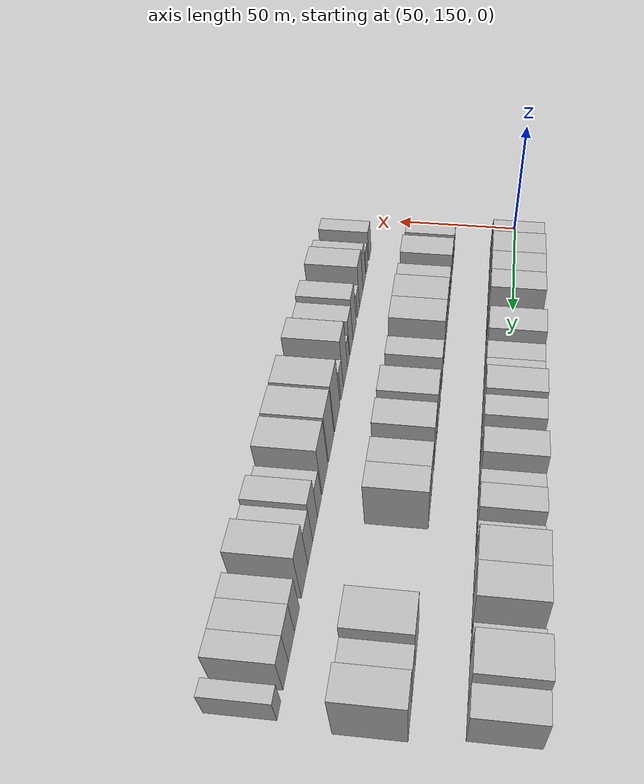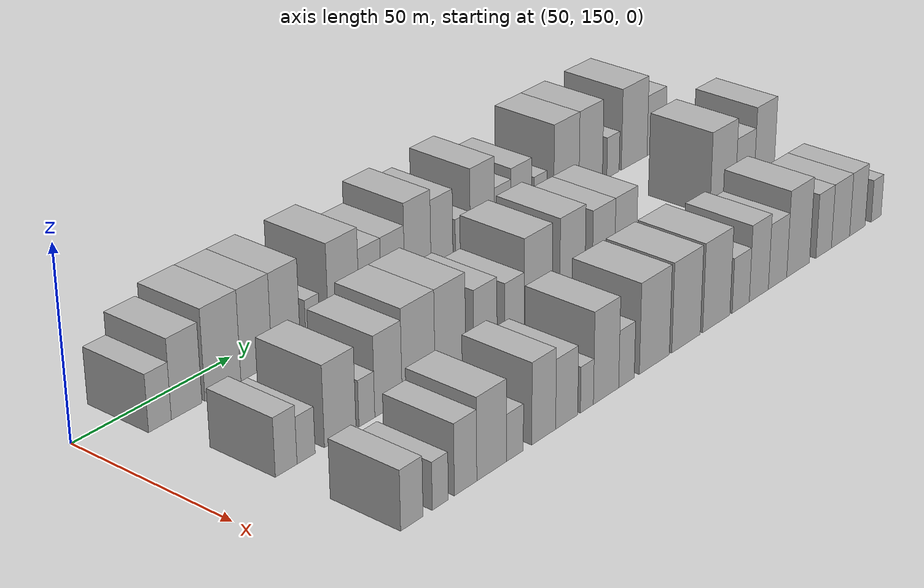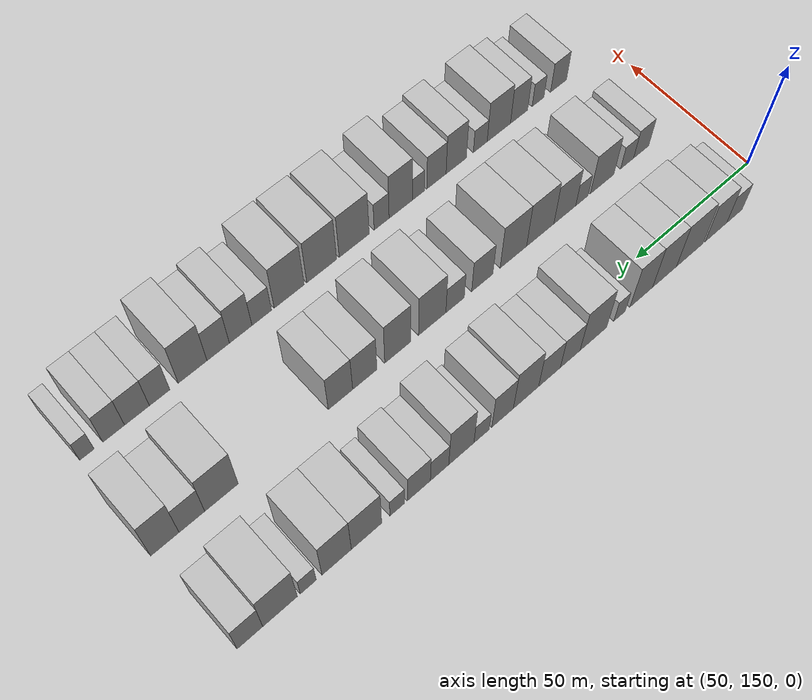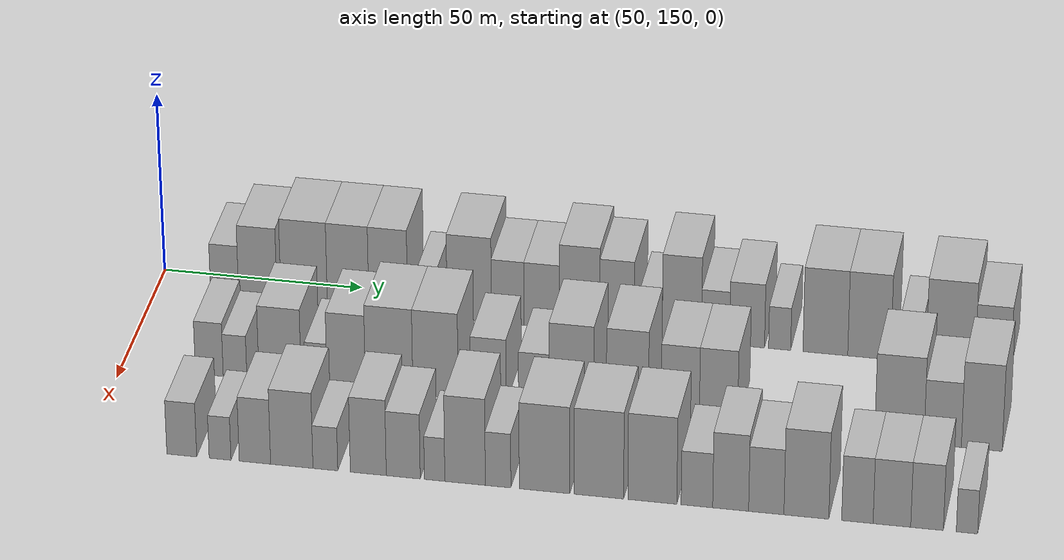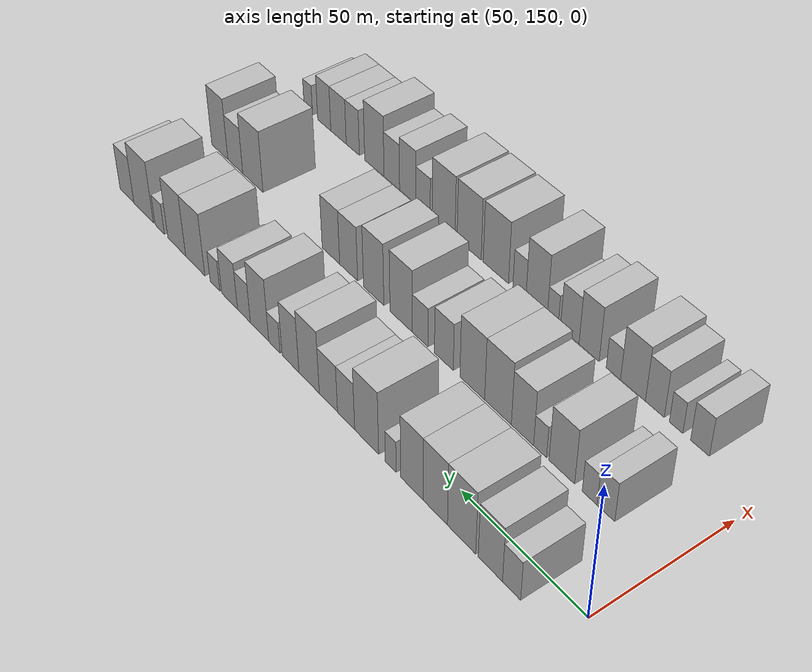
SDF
<sdf version="1.6">
 <world name="default">
  <model name="building_58">
   <static>1</static>
   <pose>50.0000 167.4684 0 0.000000 0.000000 0.000000</pose>
   <link name="link">
    <pose>0 0 7.50 0 0 0</pose>
    <collision name="collision"><geometry><box><size>20.0000 7.0686 15.0000</size></box></geometry></collision>
    <visual name="visual">
     <cast_shadows>0</cast_shadows>
     <geometry><box><size>20.0000 7.0686 15.0000</size></box></geometry>
     <material>
      <script>
       <uri>model://HANNAS_wall/materials/scripts</uri>
       <uri>model://HANNAS_wall/materials/textures</uri>
       <name>vrc/HANNAS_wall</name>
      </script>
     </material>
    </visual>
   </link>
  </model>
  <model name="building_59">
   <static>1</static>
   <pose>50.0000 175.8399 0 0.000000 0.000000 0.000000</pose>
   <link name="link">
    <pose>0 0 10.50 0 0 0</pose>
    <collision name="collision"><geometry><box><size>20.0000 9.6744 21.0000</size></box></geometry></collision>
    <visual name="visual">
     <cast_shadows>0</cast_shadows>
     <geometry><box><size>20.0000 9.6744 21.0000</size></box></geometry>
     <material>
      <script>
       <uri>model://HANNAS_wall/materials/scripts</uri>
       <uri>model://HANNAS_wall/materials/textures</uri>
       <name>vrc/HANNAS_wall</name>
      </script>
     </material>
    </visual>
   </link>
  </model>
  <model name="building_60">
   <static>1</static>
   <pose>50.0000 187.4955 0 0.000000 0.000000 0.000000</pose>
   <link name="link">
    <pose>0 0 12.00 0 0 0</pose>
    <collision name="collision"><geometry><box><size>20.0000 11.6368 24.0000</size></box></geometry></collision>
    <visual name="visual">
     <cast_shadows>0</cast_shadows>
     <geometry><box><size>20.0000 11.6368 24.0000</size></box></geometry>
     <material>
      <script>
       <uri>model://HANNAS_wall/materials/scripts</uri>
       <uri>model://HANNAS_wall/materials/textures</uri>
       <name>vrc/HANNAS_wall</name>
      </script>
     </material>
    </visual>
   </link>
  </model>
  <model name="building_61">
   <static>1</static>
   <pose>50.0000 198.5127 0 0.000000 0.000000 0.000000</pose>
   <link name="link">
    <pose>0 0 12.00 0 0 0</pose>
    <collision name="collision"><geometry><box><size>20.0000 10.3974 24.0000</size></box></geometry></collision>
    <visual name="visual">
     <cast_shadows>0</cast_shadows>
     <geometry><box><size>20.0000 10.3974 24.0000</size></box></geometry>
     <material>
      <script>
       <uri>model://HANNAS_wall/materials/scripts</uri>
       <uri>model://HANNAS_wall/materials/textures</uri>
       <name>vrc/HANNAS_wall</name>
      </script>
     </material>
    </visual>
   </link>
  </model>
  <model name="building_62">
   <static>1</static>
   <pose>50.0000 208.5601 0 0.000000 0.000000 0.000000</pose>
   <link name="link">
    <pose>0 0 12.00 0 0 0</pose>
    <collision name="collision"><geometry><box><size>20.0000 9.6974 24.0000</size></box></geometry></collision>
    <visual name="visual">
     <cast_shadows>0</cast_shadows>
     <geometry><box><size>20.0000 9.6974 24.0000</size></box></geometry>
     <material>
      <script>
       <uri>model://HANNAS_wall/materials/scripts</uri>
       <uri>model://HANNAS_wall/materials/textures</uri>
       <name>vrc/HANNAS_wall</name>
      </script>
     </material>
    </visual>
   </link>
  </model>
  <model name="building_63">
   <static>1</static>
   <pose>50.0000 217.8265 0 0.000000 0.000000 0.000000</pose>
   <link name="link">
    <pose>0 0 6.00 0 0 0</pose>
    <collision name="collision"><geometry><box><size>20.0000 4.8355 12.0000</size></box></geometry></collision>
    <visual name="visual">
     <cast_shadows>0</cast_shadows>
     <geometry><box><size>20.0000 4.8355 12.0000</size></box></geometry>
     <material>
      <script>
       <uri>model://HANNAS_wall/materials/scripts</uri>
       <uri>model://HANNAS_wall/materials/textures</uri>
       <name>vrc/HANNAS_wall</name>
      </script>
     </material>
    </visual>
   </link>
  </model>
  <model name="building_64">
   <static>1</static>
   <pose>50.0000 228.7543 0 0.000000 0.000000 0.000000</pose>
   <link name="link">
    <pose>0 0 12.00 0 0 0</pose>
    <collision name="collision"><geometry><box><size>20.0000 11.0201 24.0000</size></box></geometry></collision>
    <visual name="visual">
     <cast_shadows>0</cast_shadows>
     <geometry><box><size>20.0000 11.0201 24.0000</size></box></geometry>
     <material>
      <script>
       <uri>model://HANNAS_wall/materials/scripts</uri>
       <uri>model://HANNAS_wall/materials/textures</uri>
       <name>vrc/HANNAS_wall</name>
      </script>
     </material>
    </visual>
   </link>
  </model>
  <model name="building_65">
   <static>1</static>
   <pose>50.0000 238.3032 0 0.000000 0.000000 0.000000</pose>
   <link name="link">
    <pose>0 0 9.00 0 0 0</pose>
    <collision name="collision"><geometry><box><size>20.0000 8.0778 18.0000</size></box></geometry></collision>
    <visual name="visual">
     <cast_shadows>0</cast_shadows>
     <geometry><box><size>20.0000 8.0778 18.0000</size></box></geometry>
     <material>
      <script>
       <uri>model://HANNAS_wall/materials/scripts</uri>
       <uri>model://HANNAS_wall/materials/textures</uri>
       <name>vrc/HANNAS_wall</name>
      </script>
     </material>
    </visual>
   </link>
  </model>
  <model name="building_66">
   <static>1</static>
   <pose>50.0000 246.7256 0 0.000000 0.000000 0.000000</pose>
   <link name="link">
    <pose>0 0 9.00 0 0 0</pose>
    <collision name="collision"><geometry><box><size>20.0000 8.7670 18.0000</size></box></geometry></collision>
    <visual name="visual">
     <cast_shadows>0</cast_shadows>
     <geometry><box><size>20.0000 8.7670 18.0000</size></box></geometry>
     <material>
      <script>
       <uri>model://HANNAS_wall/materials/scripts</uri>
       <uri>model://HANNAS_wall/materials/textures</uri>
       <name>vrc/HANNAS_wall</name>
      </script>
     </material>
    </visual>
   </link>
  </model>
  <model name="building_67">
   <static>1</static>
   <pose>50.0000 256.1315 0 0.000000 0.000000 0.000000</pose>
   <link name="link">
    <pose>0 0 12.00 0 0 0</pose>
    <collision name="collision"><geometry><box><size>20.0000 10.0448 24.0000</size></box></geometry></collision>
    <visual name="visual">
     <cast_shadows>0</cast_shadows>
     <geometry><box><size>20.0000 10.0448 24.0000</size></box></geometry>
     <material>
      <script>
       <uri>model://HANNAS_wall/materials/scripts</uri>
       <uri>model://HANNAS_wall/materials/textures</uri>
       <name>vrc/HANNAS_wall</name>
      </script>
     </material>
    </visual>
   </link>
  </model>
  <model name="building_68">
   <static>1</static>
   <pose>50.0000 265.3993 0 0.000000 0.000000 0.000000</pose>
   <link name="link">
    <pose>0 0 10.50 0 0 0</pose>
    <collision name="collision"><geometry><box><size>20.0000 8.4908 21.0000</size></box></geometry></collision>
    <visual name="visual">
     <cast_shadows>0</cast_shadows>
     <geometry><box><size>20.0000 8.4908 21.0000</size></box></geometry>
     <material>
      <script>
       <uri>model://HANNAS_wall/materials/scripts</uri>
       <uri>model://HANNAS_wall/materials/textures</uri>
       <name>vrc/HANNAS_wall</name>
      </script>
     </material>
    </visual>
   </link>
  </model>
  <model name="building_69">
   <static>1</static>
   <pose>50.0000 273.5868 0 0.000000 0.000000 0.000000</pose>
   <link name="link">
    <pose>0 0 6.00 0 0 0</pose>
    <collision name="collision"><geometry><box><size>20.0000 5.8842 12.0000</size></box></geometry></collision>
    <visual name="visual">
     <cast_shadows>0</cast_shadows>
     <geometry><box><size>20.0000 5.8842 12.0000</size></box></geometry>
     <material>
      <script>
       <uri>model://HANNAS_wall/materials/scripts</uri>
       <uri>model://HANNAS_wall/materials/textures</uri>
       <name>vrc/HANNAS_wall</name>
      </script>
     </material>
    </visual>
   </link>
  </model>
  <model name="building_70">
   <static>1</static>
   <pose>50.0000 281.3481 0 0.000000 0.000000 0.000000</pose>
   <link name="link">
    <pose>0 0 12.00 0 0 0</pose>
    <collision name="collision"><geometry><box><size>20.0000 9.6383 24.0000</size></box></geometry></collision>
    <visual name="visual">
     <cast_shadows>0</cast_shadows>
     <geometry><box><size>20.0000 9.6383 24.0000</size></box></geometry>
     <material>
      <script>
       <uri>model://HANNAS_wall/materials/scripts</uri>
       <uri>model://HANNAS_wall/materials/textures</uri>
       <name>vrc/HANNAS_wall</name>
      </script>
     </material>
    </visual>
   </link>
  </model>
  <model name="building_71">
   <static>1</static>
   <pose>50.0000 289.6232 0 0.000000 0.000000 0.000000</pose>
   <link name="link">
    <pose>0 0 7.50 0 0 0</pose>
    <collision name="collision"><geometry><box><size>20.0000 6.9120 15.0000</size></box></geometry></collision>
    <visual name="visual">
     <cast_shadows>0</cast_shadows>
     <geometry><box><size>20.0000 6.9120 15.0000</size></box></geometry>
     <material>
      <script>
       <uri>model://HANNAS_wall/materials/scripts</uri>
       <uri>model://HANNAS_wall/materials/textures</uri>
       <name>vrc/HANNAS_wall</name>
      </script>
     </material>
    </visual>
   </link>
  </model>
  <model name="building_72">
   <static>1</static>
   <pose>50.0000 297.3743 0 0.000000 0.000000 0.000000</pose>
   <link name="link">
    <pose>0 0 9.00 0 0 0</pose>
    <collision name="collision"><geometry><box><size>20.0000 8.5903 18.0000</size></box></geometry></collision>
    <visual name="visual">
     <cast_shadows>0</cast_shadows>
     <geometry><box><size>20.0000 8.5903 18.0000</size></box></geometry>
     <material>
      <script>
       <uri>model://HANNAS_wall/materials/scripts</uri>
       <uri>model://HANNAS_wall/materials/textures</uri>
       <name>vrc/HANNAS_wall</name>
      </script>
     </material>
    </visual>
   </link>
  </model>
  <model name="building_73">
   <static>1</static>
   <pose>50.0000 305.3753 0 0.000000 0.000000 0.000000</pose>
   <link name="link">
    <pose>0 0 6.00 0 0 0</pose>
    <collision name="collision"><geometry><box><size>20.0000 5.4117 12.0000</size></box></geometry></collision>
    <visual name="visual">
     <cast_shadows>0</cast_shadows>
     <geometry><box><size>20.0000 5.4117 12.0000</size></box></geometry>
     <material>
      <script>
       <uri>model://HANNAS_wall/materials/scripts</uri>
       <uri>model://HANNAS_wall/materials/textures</uri>
       <name>vrc/HANNAS_wall</name>
      </script>
     </material>
    </visual>
   </link>
  </model>
  <model name="building_74">
   <static>1</static>
   <pose>50.0000 316.5527 0 0.000000 0.000000 0.000000</pose>
   <link name="link">
    <pose>0 0 12.00 0 0 0</pose>
    <collision name="collision"><geometry><box><size>20.0000 10.9432 24.0000</size></box></geometry></collision>
    <visual name="visual">
     <cast_shadows>0</cast_shadows>
     <geometry><box><size>20.0000 10.9432 24.0000</size></box></geometry>
     <material>
      <script>
       <uri>model://HANNAS_wall/materials/scripts</uri>
       <uri>model://HANNAS_wall/materials/textures</uri>
       <name>vrc/HANNAS_wall</name>
      </script>
     </material>
    </visual>
   </link>
  </model>
  <model name="building_75">
   <static>1</static>
   <pose>50.0000 327.2514 0 0.000000 0.000000 0.000000</pose>
   <link name="link">
    <pose>0 0 12.00 0 0 0</pose>
    <collision name="collision"><geometry><box><size>20.0000 10.4541 24.0000</size></box></geometry></collision>
    <visual name="visual">
     <cast_shadows>0</cast_shadows>
     <geometry><box><size>20.0000 10.4541 24.0000</size></box></geometry>
     <material>
      <script>
       <uri>model://HANNAS_wall/materials/scripts</uri>
       <uri>model://HANNAS_wall/materials/textures</uri>
       <name>vrc/HANNAS_wall</name>
      </script>
     </material>
    </visual>
   </link>
  </model>
  <model name="building_76">
   <static>1</static>
   <pose>50.0000 337.2735 0 0.000000 0.000000 0.000000</pose>
   <link name="link">
    <pose>0 0 6.00 0 0 0</pose>
    <collision name="collision"><geometry><box><size>20.0000 5.5901 12.0000</size></box></geometry></collision>
    <visual name="visual">
     <cast_shadows>0</cast_shadows>
     <geometry><box><size>20.0000 5.5901 12.0000</size></box></geometry>
     <material>
      <script>
       <uri>model://HANNAS_wall/materials/scripts</uri>
       <uri>model://HANNAS_wall/materials/textures</uri>
       <name>vrc/HANNAS_wall</name>
      </script>
     </material>
    </visual>
   </link>
  </model>
  <model name="building_77">
   <static>1</static>
   <pose>50.0000 347.0227 0 0.000000 0.000000 0.000000</pose>
   <link name="link">
    <pose>0 0 12.00 0 0 0</pose>
    <collision name="collision"><geometry><box><size>20.0000 11.9084 24.0000</size></box></geometry></collision>
    <visual name="visual">
     <cast_shadows>0</cast_shadows>
     <geometry><box><size>20.0000 11.9084 24.0000</size></box></geometry>
     <material>
      <script>
       <uri>model://HANNAS_wall/materials/scripts</uri>
       <uri>model://HANNAS_wall/materials/textures</uri>
       <name>vrc/HANNAS_wall</name>
      </script>
     </material>
    </visual>
   </link>
  </model>
  <model name="building_78">
   <static>1</static>
   <pose>50.0000 357.3145 0 0.000000 0.000000 0.000000</pose>
   <link name="link">
    <pose>0 0 9.00 0 0 0</pose>
    <collision name="collision"><geometry><box><size>20.0000 8.6751 18.0000</size></box></geometry></collision>
    <visual name="visual">
     <cast_shadows>0</cast_shadows>
     <geometry><box><size>20.0000 8.6751 18.0000</size></box></geometry>
     <material>
      <script>
       <uri>model://HANNAS_wall/materials/scripts</uri>
       <uri>model://HANNAS_wall/materials/textures</uri>
       <name>vrc/HANNAS_wall</name>
      </script>
     </material>
    </visual>
   </link>
  </model>
  <model name="building_138">
   <static>1</static>
   <pose>85.0000 171.6947 0 0.000000 0.000000 0.000000</pose>
   <link name="link">
    <pose>0 0 7.50 0 0 0</pose>
    <collision name="collision"><geometry><box><size>20.0000 6.8505 15.0000</size></box></geometry></collision>
    <visual name="visual">
     <cast_shadows>0</cast_shadows>
     <geometry><box><size>20.0000 6.8505 15.0000</size></box></geometry>
     <material>
      <script>
       <uri>model://HANNAS_wall/materials/scripts</uri>
       <uri>model://HANNAS_wall/materials/textures</uri>
       <name>vrc/HANNAS_wall</name>
      </script>
     </material>
    </visual>
   </link>
  </model>
  <model name="building_139">
   <static>1</static>
   <pose>85.0000 178.0321 0 0.000000 0.000000 0.000000</pose>
   <link name="link">
    <pose>0 0 6.00 0 0 0</pose>
    <collision name="collision"><geometry><box><size>20.0000 5.8242 12.0000</size></box></geometry></collision>
    <visual name="visual">
     <cast_shadows>0</cast_shadows>
     <geometry><box><size>20.0000 5.8242 12.0000</size></box></geometry>
     <material>
      <script>
       <uri>model://HANNAS_wall/materials/scripts</uri>
       <uri>model://HANNAS_wall/materials/textures</uri>
       <name>vrc/HANNAS_wall</name>
      </script>
     </material>
    </visual>
   </link>
  </model>
  <model name="building_140">
   <static>1</static>
   <pose>85.0000 189.1366 0 0.000000 0.000000 0.000000</pose>
   <link name="link">
    <pose>0 0 10.50 0 0 0</pose>
    <collision name="collision"><geometry><box><size>20.0000 10.3849 21.0000</size></box></geometry></collision>
    <visual name="visual">
     <cast_shadows>0</cast_shadows>
     <geometry><box><size>20.0000 10.3849 21.0000</size></box></geometry>
     <material>
      <script>
       <uri>model://HANNAS_wall/materials/scripts</uri>
       <uri>model://HANNAS_wall/materials/textures</uri>
       <name>vrc/HANNAS_wall</name>
      </script>
     </material>
    </visual>
   </link>
  </model>
  <model name="building_141">
   <static>1</static>
   <pose>85.0000 198.0063 0 0.000000 0.000000 0.000000</pose>
   <link name="link">
    <pose>0 0 6.00 0 0 0</pose>
    <collision name="collision"><geometry><box><size>20.0000 5.3545 12.0000</size></box></geometry></collision>
    <visual name="visual">
     <cast_shadows>0</cast_shadows>
     <geometry><box><size>20.0000 5.3545 12.0000</size></box></geometry>
     <material>
      <script>
       <uri>model://HANNAS_wall/materials/scripts</uri>
       <uri>model://HANNAS_wall/materials/textures</uri>
       <name>vrc/HANNAS_wall</name>
      </script>
     </material>
    </visual>
   </link>
  </model>
  <model name="building_142">
   <static>1</static>
   <pose>85.0000 205.3865 0 0.000000 0.000000 0.000000</pose>
   <link name="link">
    <pose>0 0 10.50 0 0 0</pose>
    <collision name="collision"><geometry><box><size>20.0000 9.4059 21.0000</size></box></geometry></collision>
    <visual name="visual">
     <cast_shadows>0</cast_shadows>
     <geometry><box><size>20.0000 9.4059 21.0000</size></box></geometry>
     <material>
      <script>
       <uri>model://HANNAS_wall/materials/scripts</uri>
       <uri>model://HANNAS_wall/materials/textures</uri>
       <name>vrc/HANNAS_wall</name>
      </script>
     </material>
    </visual>
   </link>
  </model>
  <model name="building_143">
   <static>1</static>
   <pose>85.0000 215.8796 0 0.000000 0.000000 0.000000</pose>
   <link name="link">
    <pose>0 0 12.00 0 0 0</pose>
    <collision name="collision"><geometry><box><size>20.0000 11.5802 24.0000</size></box></geometry></collision>
    <visual name="visual">
     <cast_shadows>0</cast_shadows>
     <geometry><box><size>20.0000 11.5802 24.0000</size></box></geometry>
     <material>
      <script>
       <uri>model://HANNAS_wall/materials/scripts</uri>
       <uri>model://HANNAS_wall/materials/textures</uri>
       <name>vrc/HANNAS_wall</name>
      </script>
     </material>
    </visual>
   </link>
  </model>
  <model name="building_144">
   <static>1</static>
   <pose>85.0000 227.1946 0 0.000000 0.000000 0.000000</pose>
   <link name="link">
    <pose>0 0 12.00 0 0 0</pose>
    <collision name="collision"><geometry><box><size>20.0000 11.0499 24.0000</size></box></geometry></collision>
    <visual name="visual">
     <cast_shadows>0</cast_shadows>
     <geometry><box><size>20.0000 11.0499 24.0000</size></box></geometry>
     <material>
      <script>
       <uri>model://HANNAS_wall/materials/scripts</uri>
       <uri>model://HANNAS_wall/materials/textures</uri>
       <name>vrc/HANNAS_wall</name>
      </script>
     </material>
    </visual>
   </link>
  </model>
  <model name="building_145">
   <static>1</static>
   <pose>85.0000 240.0616 0 0.000000 0.000000 0.000000</pose>
   <link name="link">
    <pose>0 0 9.00 0 0 0</pose>
    <collision name="collision"><geometry><box><size>20.0000 8.6841 18.0000</size></box></geometry></collision>
    <visual name="visual">
     <cast_shadows>0</cast_shadows>
     <geometry><box><size>20.0000 8.6841 18.0000</size></box></geometry>
     <material>
      <script>
       <uri>model://HANNAS_wall/materials/scripts</uri>
       <uri>model://HANNAS_wall/materials/textures</uri>
       <name>vrc/HANNAS_wall</name>
      </script>
     </material>
    </visual>
   </link>
  </model>
  <model name="building_146">
   <static>1</static>
   <pose>85.0000 251.1031 0 0.000000 0.000000 0.000000</pose>
   <link name="link">
    <pose>0 0 7.50 0 0 0</pose>
    <collision name="collision"><geometry><box><size>20.0000 7.3989 15.0000</size></box></geometry></collision>
    <visual name="visual">
     <cast_shadows>0</cast_shadows>
     <geometry><box><size>20.0000 7.3989 15.0000</size></box></geometry>
     <material>
      <script>
       <uri>model://HANNAS_wall/materials/scripts</uri>
       <uri>model://HANNAS_wall/materials/textures</uri>
       <name>vrc/HANNAS_wall</name>
      </script>
     </material>
    </visual>
   </link>
  </model>
  <model name="building_147">
   <static>1</static>
   <pose>85.0000 260.2322 0 0.000000 0.000000 0.000000</pose>
   <link name="link">
    <pose>0 0 12.00 0 0 0</pose>
    <collision name="collision"><geometry><box><size>20.0000 10.8592 24.0000</size></box></geometry></collision>
    <visual name="visual">
     <cast_shadows>0</cast_shadows>
     <geometry><box><size>20.0000 10.8592 24.0000</size></box></geometry>
     <material>
      <script>
       <uri>model://HANNAS_wall/materials/scripts</uri>
       <uri>model://HANNAS_wall/materials/textures</uri>
       <name>vrc/HANNAS_wall</name>
      </script>
     </material>
    </visual>
   </link>
  </model>
  <model name="building_148">
   <static>1</static>
   <pose>85.0000 273.7429 0 0.000000 0.000000 0.000000</pose>
   <link name="link">
    <pose>0 0 12.00 0 0 0</pose>
    <collision name="collision"><geometry><box><size>20.0000 10.1622 24.0000</size></box></geometry></collision>
    <visual name="visual">
     <cast_shadows>0</cast_shadows>
     <geometry><box><size>20.0000 10.1622 24.0000</size></box></geometry>
     <material>
      <script>
       <uri>model://HANNAS_wall/materials/scripts</uri>
       <uri>model://HANNAS_wall/materials/textures</uri>
       <name>vrc/HANNAS_wall</name>
      </script>
     </material>
    </visual>
   </link>
  </model>
  <model name="building_149">
   <static>1</static>
   <pose>85.0000 286.4471 0 0.000000 0.000000 0.000000</pose>
   <link name="link">
    <pose>0 0 10.50 0 0 0</pose>
    <collision name="collision"><geometry><box><size>20.0000 9.2464 21.0000</size></box></geometry></collision>
    <visual name="visual">
     <cast_shadows>0</cast_shadows>
     <geometry><box><size>20.0000 9.2464 21.0000</size></box></geometry>
     <material>
      <script>
       <uri>model://HANNAS_wall/materials/scripts</uri>
       <uri>model://HANNAS_wall/materials/textures</uri>
       <name>vrc/HANNAS_wall</name>
      </script>
     </material>
    </visual>
   </link>
  </model>
  <model name="building_150">
   <static>1</static>
   <pose>85.0000 295.6731 0 0.000000 0.000000 0.000000</pose>
   <link name="link">
    <pose>0 0 10.50 0 0 0</pose>
    <collision name="collision"><geometry><box><size>20.0000 9.2055 21.0000</size></box></geometry></collision>
    <visual name="visual">
     <cast_shadows>0</cast_shadows>
     <geometry><box><size>20.0000 9.2055 21.0000</size></box></geometry>
     <material>
      <script>
       <uri>model://HANNAS_wall/materials/scripts</uri>
       <uri>model://HANNAS_wall/materials/textures</uri>
       <name>vrc/HANNAS_wall</name>
      </script>
     </material>
    </visual>
   </link>
  </model>
  <model name="building_151">
   <static>1</static>
   <pose>85.0000 338.9034 0 0.000000 0.000000 0.000000</pose>
   <link name="link">
    <pose>0 0 12.00 0 0 0</pose>
    <collision name="collision"><geometry><box><size>20.0000 11.7517 24.0000</size></box></geometry></collision>
    <visual name="visual">
     <cast_shadows>0</cast_shadows>
     <geometry><box><size>20.0000 11.7517 24.0000</size></box></geometry>
     <material>
      <script>
       <uri>model://HANNAS_wall/materials/scripts</uri>
       <uri>model://HANNAS_wall/materials/textures</uri>
       <name>vrc/HANNAS_wall</name>
      </script>
     </material>
    </visual>
   </link>
  </model>
  <model name="building_152">
   <static>1</static>
   <pose>85.0000 349.2161 0 0.000000 0.000000 0.000000</pose>
   <link name="link">
    <pose>0 0 9.00 0 0 0</pose>
    <collision name="collision"><geometry><box><size>20.0000 8.8738 18.0000</size></box></geometry></collision>
    <visual name="visual">
     <cast_shadows>0</cast_shadows>
     <geometry><box><size>20.0000 8.8738 18.0000</size></box></geometry>
     <material>
      <script>
       <uri>model://HANNAS_wall/materials/scripts</uri>
       <uri>model://HANNAS_wall/materials/textures</uri>
       <name>vrc/HANNAS_wall</name>
      </script>
     </material>
    </visual>
   </link>
  </model>
  <model name="building_153">
   <static>1</static>
   <pose>85.0000 358.4940 0 0.000000 0.000000 0.000000</pose>
   <link name="link">
    <pose>0 0 12.00 0 0 0</pose>
    <collision name="collision"><geometry><box><size>20.0000 9.6821 24.0000</size></box></geometry></collision>
    <visual name="visual">
     <cast_shadows>0</cast_shadows>
     <geometry><box><size>20.0000 9.6821 24.0000</size></box></geometry>
     <material>
      <script>
       <uri>model://HANNAS_wall/materials/scripts</uri>
       <uri>model://HANNAS_wall/materials/textures</uri>
       <name>vrc/HANNAS_wall</name>
      </script>
     </material>
    </visual>
   </link>
  </model>
  <model name="building_212">
   <static>1</static>
   <pose>120.0000 173.1378 0 0.000000 0.000000 0.000000</pose>
   <link name="link">
    <pose>0 0 7.50 0 0 0</pose>
    <collision name="collision"><geometry><box><size>20.0000 7.2031 15.0000</size></box></geometry></collision>
    <visual name="visual">
     <cast_shadows>0</cast_shadows>
     <geometry><box><size>20.0000 7.2031 15.0000</size></box></geometry>
     <material>
      <script>
       <uri>model://HANNAS_wall/materials/scripts</uri>
       <uri>model://HANNAS_wall/materials/textures</uri>
       <name>vrc/HANNAS_wall</name>
      </script>
     </material>
    </visual>
   </link>
  </model>
  <model name="building_213">
   <static>1</static>
   <pose>120.0000 182.3725 0 0.000000 0.000000 0.000000</pose>
   <link name="link">
    <pose>0 0 6.00 0 0 0</pose>
    <collision name="collision"><geometry><box><size>20.0000 5.2661 12.0000</size></box></geometry></collision>
    <visual name="visual">
     <cast_shadows>0</cast_shadows>
     <geometry><box><size>20.0000 5.2661 12.0000</size></box></geometry>
     <material>
      <script>
       <uri>model://HANNAS_wall/materials/scripts</uri>
       <uri>model://HANNAS_wall/materials/textures</uri>
       <name>vrc/HANNAS_wall</name>
      </script>
     </material>
    </visual>
   </link>
  </model>
  <model name="building_214">
   <static>1</static>
   <pose>120.0000 190.7791 0 0.000000 0.000000 0.000000</pose>
   <link name="link">
    <pose>0 0 9.00 0 0 0</pose>
    <collision name="collision"><geometry><box><size>20.0000 7.5471 18.0000</size></box></geometry></collision>
    <visual name="visual">
     <cast_shadows>0</cast_shadows>
     <geometry><box><size>20.0000 7.5471 18.0000</size></box></geometry>
     <material>
      <script>
       <uri>model://HANNAS_wall/materials/scripts</uri>
       <uri>model://HANNAS_wall/materials/textures</uri>
       <name>vrc/HANNAS_wall</name>
      </script>
     </material>
    </visual>
   </link>
  </model>
  <model name="building_215">
   <static>1</static>
   <pose>120.0000 199.6358 0 0.000000 0.000000 0.000000</pose>
   <link name="link">
    <pose>0 0 10.50 0 0 0</pose>
    <collision name="collision"><geometry><box><size>20.0000 10.1663 21.0000</size></box></geometry></collision>
    <visual name="visual">
     <cast_shadows>0</cast_shadows>
     <geometry><box><size>20.0000 10.1663 21.0000</size></box></geometry>
     <material>
      <script>
       <uri>model://HANNAS_wall/materials/scripts</uri>
       <uri>model://HANNAS_wall/materials/textures</uri>
       <name>vrc/HANNAS_wall</name>
      </script>
     </material>
    </visual>
   </link>
  </model>
  <model name="building_216">
   <static>1</static>
   <pose>120.0000 207.6960 0 0.000000 0.000000 0.000000</pose>
   <link name="link">
    <pose>0 0 6.00 0 0 0</pose>
    <collision name="collision"><geometry><box><size>20.0000 5.9541 12.0000</size></box></geometry></collision>
    <visual name="visual">
     <cast_shadows>0</cast_shadows>
     <geometry><box><size>20.0000 5.9541 12.0000</size></box></geometry>
     <material>
      <script>
       <uri>model://HANNAS_wall/materials/scripts</uri>
       <uri>model://HANNAS_wall/materials/textures</uri>
       <name>vrc/HANNAS_wall</name>
      </script>
     </material>
    </visual>
   </link>
  </model>
  <model name="building_217">
   <static>1</static>
   <pose>120.0000 217.9767 0 0.000000 0.000000 0.000000</pose>
   <link name="link">
    <pose>0 0 10.50 0 0 0</pose>
    <collision name="collision"><geometry><box><size>20.0000 8.6075 21.0000</size></box></geometry></collision>
    <visual name="visual">
     <cast_shadows>0</cast_shadows>
     <geometry><box><size>20.0000 8.6075 21.0000</size></box></geometry>
     <material>
      <script>
       <uri>model://HANNAS_wall/materials/scripts</uri>
       <uri>model://HANNAS_wall/materials/textures</uri>
       <name>vrc/HANNAS_wall</name>
      </script>
     </material>
    </visual>
   </link>
  </model>
  <model name="building_218">
   <static>1</static>
   <pose>120.0000 226.3321 0 0.000000 0.000000 0.000000</pose>
   <link name="link">
    <pose>0 0 9.00 0 0 0</pose>
    <collision name="collision"><geometry><box><size>20.0000 8.1031 18.0000</size></box></geometry></collision>
    <visual name="visual">
     <cast_shadows>0</cast_shadows>
     <geometry><box><size>20.0000 8.1031 18.0000</size></box></geometry>
     <material>
      <script>
       <uri>model://HANNAS_wall/materials/scripts</uri>
       <uri>model://HANNAS_wall/materials/textures</uri>
       <name>vrc/HANNAS_wall</name>
      </script>
     </material>
    </visual>
   </link>
  </model>
  <model name="building_219">
   <static>1</static>
   <pose>120.0000 233.8186 0 0.000000 0.000000 0.000000</pose>
   <link name="link">
    <pose>0 0 6.00 0 0 0</pose>
    <collision name="collision"><geometry><box><size>20.0000 4.8700 12.0000</size></box></geometry></collision>
    <visual name="visual">
     <cast_shadows>0</cast_shadows>
     <geometry><box><size>20.0000 4.8700 12.0000</size></box></geometry>
     <material>
      <script>
       <uri>model://HANNAS_wall/materials/scripts</uri>
       <uri>model://HANNAS_wall/materials/textures</uri>
       <name>vrc/HANNAS_wall</name>
      </script>
     </material>
    </visual>
   </link>
  </model>
  <model name="building_220">
   <static>1</static>
   <pose>120.0000 241.0760 0 0.000000 0.000000 0.000000</pose>
   <link name="link">
    <pose>0 0 12.00 0 0 0</pose>
    <collision name="collision"><geometry><box><size>20.0000 9.6448 24.0000</size></box></geometry></collision>
    <visual name="visual">
     <cast_shadows>0</cast_shadows>
     <geometry><box><size>20.0000 9.6448 24.0000</size></box></geometry>
     <material>
      <script>
       <uri>model://HANNAS_wall/materials/scripts</uri>
       <uri>model://HANNAS_wall/materials/textures</uri>
       <name>vrc/HANNAS_wall</name>
      </script>
     </material>
    </visual>
   </link>
  </model>
  <model name="building_221">
   <static>1</static>
   <pose>120.0000 248.9294 0 0.000000 0.000000 0.000000</pose>
   <link name="link">
    <pose>0 0 7.50 0 0 0</pose>
    <collision name="collision"><geometry><box><size>20.0000 6.0621 15.0000</size></box></geometry></collision>
    <visual name="visual">
     <cast_shadows>0</cast_shadows>
     <geometry><box><size>20.0000 6.0621 15.0000</size></box></geometry>
     <material>
      <script>
       <uri>model://HANNAS_wall/materials/scripts</uri>
       <uri>model://HANNAS_wall/materials/textures</uri>
       <name>vrc/HANNAS_wall</name>
      </script>
     </material>
    </visual>
   </link>
  </model>
  <model name="building_222">
   <static>1</static>
   <pose>120.0000 259.9529 0 0.000000 0.000000 0.000000</pose>
   <link name="link">
    <pose>0 0 12.00 0 0 0</pose>
    <collision name="collision"><geometry><box><size>20.0000 11.9849 24.0000</size></box></geometry></collision>
    <visual name="visual">
     <cast_shadows>0</cast_shadows>
     <geometry><box><size>20.0000 11.9849 24.0000</size></box></geometry>
     <material>
      <script>
       <uri>model://HANNAS_wall/materials/scripts</uri>
       <uri>model://HANNAS_wall/materials/textures</uri>
       <name>vrc/HANNAS_wall</name>
      </script>
     </material>
    </visual>
   </link>
  </model>
  <model name="building_223">
   <static>1</static>
   <pose>120.0000 272.8052 0 0.000000 0.000000 0.000000</pose>
   <link name="link">
    <pose>0 0 12.00 0 0 0</pose>
    <collision name="collision"><geometry><box><size>20.0000 11.7196 24.0000</size></box></geometry></collision>
    <visual name="visual">
     <cast_shadows>0</cast_shadows>
     <geometry><box><size>20.0000 11.7196 24.0000</size></box></geometry>
     <material>
      <script>
       <uri>model://HANNAS_wall/materials/scripts</uri>
       <uri>model://HANNAS_wall/materials/textures</uri>
       <name>vrc/HANNAS_wall</name>
      </script>
     </material>
    </visual>
   </link>
  </model>
  <model name="building_224">
   <static>1</static>
   <pose>120.0000 285.4331 0 0.000000 0.000000 0.000000</pose>
   <link name="link">
    <pose>0 0 12.00 0 0 0</pose>
    <collision name="collision"><geometry><box><size>20.0000 11.5362 24.0000</size></box></geometry></collision>
    <visual name="visual">
     <cast_shadows>0</cast_shadows>
     <geometry><box><size>20.0000 11.5362 24.0000</size></box></geometry>
     <material>
      <script>
       <uri>model://HANNAS_wall/materials/scripts</uri>
       <uri>model://HANNAS_wall/materials/textures</uri>
       <name>vrc/HANNAS_wall</name>
      </script>
     </material>
    </visual>
   </link>
  </model>
  <model name="building_225">
   <static>1</static>
   <pose>120.0000 295.9117 0 0.000000 0.000000 0.000000</pose>
   <link name="link">
    <pose>0 0 7.50 0 0 0</pose>
    <collision name="collision"><geometry><box><size>20.0000 7.4209 15.0000</size></box></geometry></collision>
    <visual name="visual">
     <cast_shadows>0</cast_shadows>
     <geometry><box><size>20.0000 7.4209 15.0000</size></box></geometry>
     <material>
      <script>
       <uri>model://HANNAS_wall/materials/scripts</uri>
       <uri>model://HANNAS_wall/materials/textures</uri>
       <name>vrc/HANNAS_wall</name>
      </script>
     </material>
    </visual>
   </link>
  </model>
  <model name="building_226">
   <static>1</static>
   <pose>120.0000 303.8402 0 0.000000 0.000000 0.000000</pose>
   <link name="link">
    <pose>0 0 10.50 0 0 0</pose>
    <collision name="collision"><geometry><box><size>20.0000 8.4362 21.0000</size></box></geometry></collision>
    <visual name="visual">
     <cast_shadows>0</cast_shadows>
     <geometry><box><size>20.0000 8.4362 21.0000</size></box></geometry>
     <material>
      <script>
       <uri>model://HANNAS_wall/materials/scripts</uri>
       <uri>model://HANNAS_wall/materials/textures</uri>
       <name>vrc/HANNAS_wall</name>
      </script>
     </material>
    </visual>
   </link>
  </model>
  <model name="building_227">
   <static>1</static>
   <pose>120.0000 312.1937 0 0.000000 0.000000 0.000000</pose>
   <link name="link">
    <pose>0 0 9.00 0 0 0</pose>
    <collision name="collision"><geometry><box><size>20.0000 8.2707 18.0000</size></box></geometry></collision>
    <visual name="visual">
     <cast_shadows>0</cast_shadows>
     <geometry><box><size>20.0000 8.2707 18.0000</size></box></geometry>
     <material>
      <script>
       <uri>model://HANNAS_wall/materials/scripts</uri>
       <uri>model://HANNAS_wall/materials/textures</uri>
       <name>vrc/HANNAS_wall</name>
      </script>
     </material>
    </visual>
   </link>
  </model>
  <model name="building_228">
   <static>1</static>
   <pose>120.0000 321.5768 0 0.000000 0.000000 0.000000</pose>
   <link name="link">
    <pose>0 0 12.00 0 0 0</pose>
    <collision name="collision"><geometry><box><size>20.0000 10.4955 24.0000</size></box></geometry></collision>
    <visual name="visual">
     <cast_shadows>0</cast_shadows>
     <geometry><box><size>20.0000 10.4955 24.0000</size></box></geometry>
     <material>
      <script>
       <uri>model://HANNAS_wall/materials/scripts</uri>
       <uri>model://HANNAS_wall/materials/textures</uri>
       <name>vrc/HANNAS_wall</name>
      </script>
     </material>
    </visual>
   </link>
  </model>
  <model name="building_229">
   <static>1</static>
   <pose>120.0000 333.4891 0 0.000000 0.000000 0.000000</pose>
   <link name="link">
    <pose>0 0 9.00 0 0 0</pose>
    <collision name="collision"><geometry><box><size>20.0000 7.3291 18.0000</size></box></geometry></collision>
    <visual name="visual">
     <cast_shadows>0</cast_shadows>
     <geometry><box><size>20.0000 7.3291 18.0000</size></box></geometry>
     <material>
      <script>
       <uri>model://HANNAS_wall/materials/scripts</uri>
       <uri>model://HANNAS_wall/materials/textures</uri>
       <name>vrc/HANNAS_wall</name>
      </script>
     </material>
    </visual>
   </link>
  </model>
  <model name="building_230">
   <static>1</static>
   <pose>120.0000 341.5335 0 0.000000 0.000000 0.000000</pose>
   <link name="link">
    <pose>0 0 9.00 0 0 0</pose>
    <collision name="collision"><geometry><box><size>20.0000 8.7596 18.0000</size></box></geometry></collision>
    <visual name="visual">
     <cast_shadows>0</cast_shadows>
     <geometry><box><size>20.0000 8.7596 18.0000</size></box></geometry>
     <material>
      <script>
       <uri>model://HANNAS_wall/materials/scripts</uri>
       <uri>model://HANNAS_wall/materials/textures</uri>
       <name>vrc/HANNAS_wall</name>
      </script>
     </material>
    </visual>
   </link>
  </model>
  <model name="building_231">
   <static>1</static>
   <pose>120.0000 349.7047 0 0.000000 0.000000 0.000000</pose>
   <link name="link">
    <pose>0 0 9.00 0 0 0</pose>
    <collision name="collision"><geometry><box><size>20.0000 7.5828 18.0000</size></box></geometry></collision>
    <visual name="visual">
     <cast_shadows>0</cast_shadows>
     <geometry><box><size>20.0000 7.5828 18.0000</size></box></geometry>
     <material>
      <script>
       <uri>model://HANNAS_wall/materials/scripts</uri>
       <uri>model://HANNAS_wall/materials/textures</uri>
       <name>vrc/HANNAS_wall</name>
      </script>
     </material>
    </visual>
   </link>
  </model>
  <model name="building_232">
   <static>1</static>
   <pose>120.0000 358.9757 0 0.000000 0.000000 0.000000</pose>
   <link name="link">
    <pose>0 0 6.00 0 0 0</pose>
    <collision name="collision"><geometry><box><size>20.0000 4.9593 12.0000</size></box></geometry></collision>
    <visual name="visual">
     <cast_shadows>0</cast_shadows>
     <geometry><box><size>20.0000 4.9593 12.0000</size></box></geometry>
     <material>
      <script>
       <uri>model://HANNAS_wall/materials/scripts</uri>
       <uri>model://HANNAS_wall/materials/textures</uri>
       <name>vrc/HANNAS_wall</name>
      </script>
     </material>
    </visual>
   </link>
  </model>
 </world>
</sdf>
